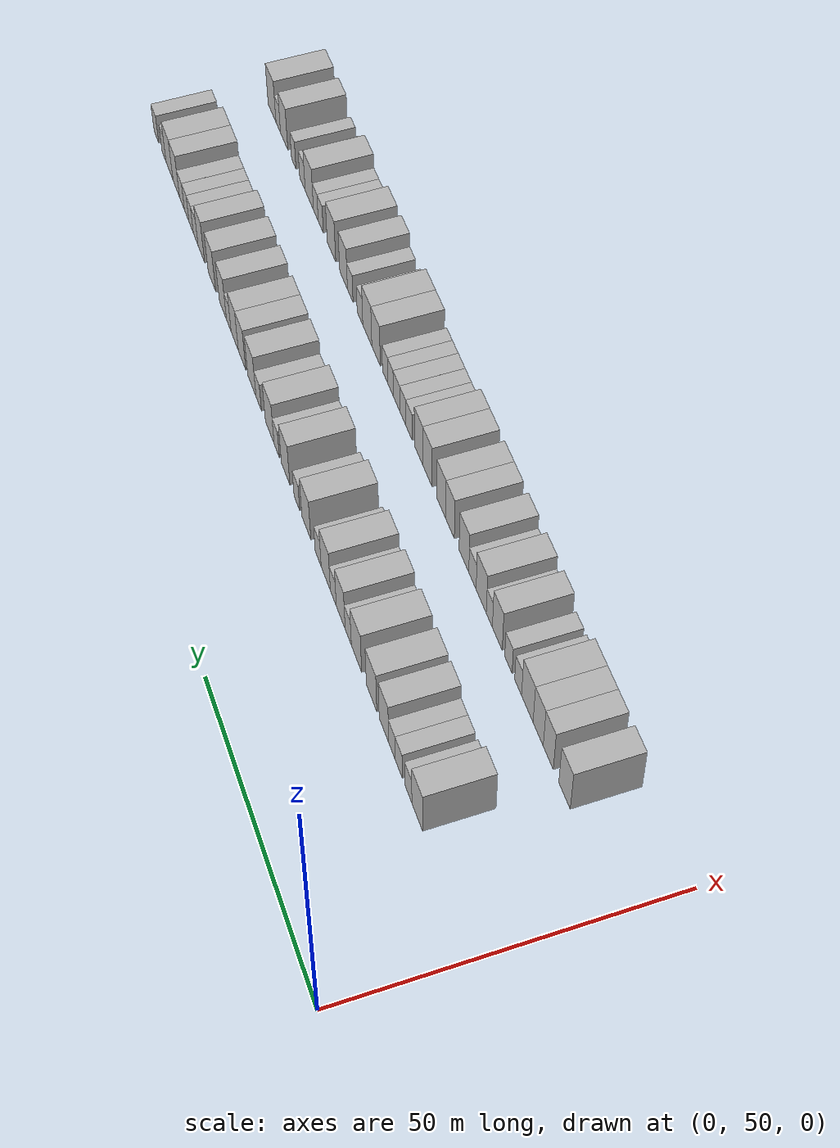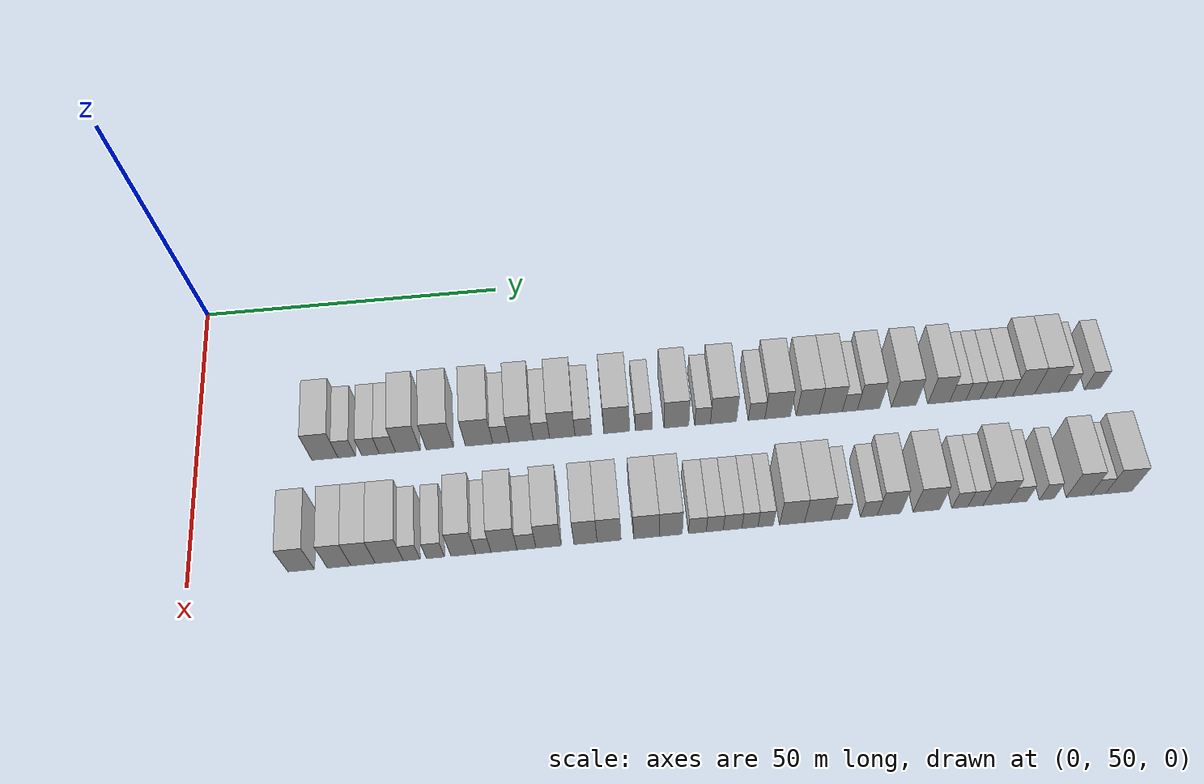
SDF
<sdf version="1.6">
 <world name="default">
  <model name="building_68">
   <static>1</static>
   <pose>25.0000 70.9002 0 0.000000 0.000000 0.000000</pose>
   <link name="link">
    <pose>0 0 4.50 0 0 0</pose>
    <collision name="collision"><geometry><box><size>10.0000 4.2645 9.0000</size></box></geometry></collision>
    <visual name="visual">
     <cast_shadows>0</cast_shadows>
     <geometry><box><size>10.0000 4.2645 9.0000</size></box></geometry>
     <material>
      <script>
       <uri>model://HANNAS_wall/materials/scripts</uri>
       <uri>model://HANNAS_wall/materials/textures</uri>
       <name>vrc/HANNAS_wall</name>
      </script>
     </material>
    </visual>
   </link>
  </model>
  <model name="building_69">
   <static>1</static>
   <pose>25.0000 74.4562 0 0.000000 0.000000 0.000000</pose>
   <link name="link">
    <pose>0 0 3.00 0 0 0</pose>
    <collision name="collision"><geometry><box><size>10.0000 2.8476 6.0000</size></box></geometry></collision>
    <visual name="visual">
     <cast_shadows>0</cast_shadows>
     <geometry><box><size>10.0000 2.8476 6.0000</size></box></geometry>
     <material>
      <script>
       <uri>model://HANNAS_wall/materials/scripts</uri>
       <uri>model://HANNAS_wall/materials/textures</uri>
       <name>vrc/HANNAS_wall</name>
      </script>
     </material>
    </visual>
   </link>
  </model>
  <model name="building_70">
   <static>1</static>
   <pose>25.0000 78.3200 0 0.000000 0.000000 0.000000</pose>
   <link name="link">
    <pose>0 0 3.00 0 0 0</pose>
    <collision name="collision"><geometry><box><size>10.0000 2.8800 6.0000</size></box></geometry></collision>
    <visual name="visual">
     <cast_shadows>0</cast_shadows>
     <geometry><box><size>10.0000 2.8800 6.0000</size></box></geometry>
     <material>
      <script>
       <uri>model://HANNAS_wall/materials/scripts</uri>
       <uri>model://HANNAS_wall/materials/textures</uri>
       <name>vrc/HANNAS_wall</name>
      </script>
     </material>
    </visual>
   </link>
  </model>
  <model name="building_71">
   <static>1</static>
   <pose>25.0000 81.1000 0 0.000000 0.000000 0.000000</pose>
   <link name="link">
    <pose>0 0 3.00 0 0 0</pose>
    <collision name="collision"><geometry><box><size>10.0000 2.6799 6.0000</size></box></geometry></collision>
    <visual name="visual">
     <cast_shadows>0</cast_shadows>
     <geometry><box><size>10.0000 2.6799 6.0000</size></box></geometry>
     <material>
      <script>
       <uri>model://HANNAS_wall/materials/scripts</uri>
       <uri>model://HANNAS_wall/materials/textures</uri>
       <name>vrc/HANNAS_wall</name>
      </script>
     </material>
    </visual>
   </link>
  </model>
  <model name="building_72">
   <static>1</static>
   <pose>25.0000 84.4372 0 0.000000 0.000000 0.000000</pose>
   <link name="link">
    <pose>0 0 4.50 0 0 0</pose>
    <collision name="collision"><geometry><box><size>10.0000 3.9945 9.0000</size></box></geometry></collision>
    <visual name="visual">
     <cast_shadows>0</cast_shadows>
     <geometry><box><size>10.0000 3.9945 9.0000</size></box></geometry>
     <material>
      <script>
       <uri>model://HANNAS_wall/materials/scripts</uri>
       <uri>model://HANNAS_wall/materials/textures</uri>
       <name>vrc/HANNAS_wall</name>
      </script>
     </material>
    </visual>
   </link>
  </model>
  <model name="building_73">
   <static>1</static>
   <pose>25.0000 89.6649 0 0.000000 0.000000 0.000000</pose>
   <link name="link">
    <pose>0 0 4.50 0 0 0</pose>
    <collision name="collision"><geometry><box><size>10.0000 4.4609 9.0000</size></box></geometry></collision>
    <visual name="visual">
     <cast_shadows>0</cast_shadows>
     <geometry><box><size>10.0000 4.4609 9.0000</size></box></geometry>
     <material>
      <script>
       <uri>model://HANNAS_wall/materials/scripts</uri>
       <uri>model://HANNAS_wall/materials/textures</uri>
       <name>vrc/HANNAS_wall</name>
      </script>
     </material>
    </visual>
   </link>
  </model>
  <model name="building_74">
   <static>1</static>
   <pose>25.0000 96.1412 0 0.000000 0.000000 0.000000</pose>
   <link name="link">
    <pose>0 0 4.50 0 0 0</pose>
    <collision name="collision"><geometry><box><size>10.0000 4.4915 9.0000</size></box></geometry></collision>
    <visual name="visual">
     <cast_shadows>0</cast_shadows>
     <geometry><box><size>10.0000 4.4915 9.0000</size></box></geometry>
     <material>
      <script>
       <uri>model://HANNAS_wall/materials/scripts</uri>
       <uri>model://HANNAS_wall/materials/textures</uri>
       <name>vrc/HANNAS_wall</name>
      </script>
     </material>
    </visual>
   </link>
  </model>
  <model name="building_75">
   <static>1</static>
   <pose>25.0000 99.7424 0 0.000000 0.000000 0.000000</pose>
   <link name="link">
    <pose>0 0 3.00 0 0 0</pose>
    <collision name="collision"><geometry><box><size>10.0000 2.7109 6.0000</size></box></geometry></collision>
    <visual name="visual">
     <cast_shadows>0</cast_shadows>
     <geometry><box><size>10.0000 2.7109 6.0000</size></box></geometry>
     <material>
      <script>
       <uri>model://HANNAS_wall/materials/scripts</uri>
       <uri>model://HANNAS_wall/materials/textures</uri>
       <name>vrc/HANNAS_wall</name>
      </script>
     </material>
    </visual>
   </link>
  </model>
  <model name="building_76">
   <static>1</static>
   <pose>25.0000 103.0812 0 0.000000 0.000000 0.000000</pose>
   <link name="link">
    <pose>0 0 4.50 0 0 0</pose>
    <collision name="collision"><geometry><box><size>10.0000 3.9667 9.0000</size></box></geometry></collision>
    <visual name="visual">
     <cast_shadows>0</cast_shadows>
     <geometry><box><size>10.0000 3.9667 9.0000</size></box></geometry>
     <material>
      <script>
       <uri>model://HANNAS_wall/materials/scripts</uri>
       <uri>model://HANNAS_wall/materials/textures</uri>
       <name>vrc/HANNAS_wall</name>
      </script>
     </material>
    </visual>
   </link>
  </model>
  <model name="building_77">
   <static>1</static>
   <pose>25.0000 106.4107 0 0.000000 0.000000 0.000000</pose>
   <link name="link">
    <pose>0 0 3.00 0 0 0</pose>
    <collision name="collision"><geometry><box><size>10.0000 2.6924 6.0000</size></box></geometry></collision>
    <visual name="visual">
     <cast_shadows>0</cast_shadows>
     <geometry><box><size>10.0000 2.6924 6.0000</size></box></geometry>
     <material>
      <script>
       <uri>model://HANNAS_wall/materials/scripts</uri>
       <uri>model://HANNAS_wall/materials/textures</uri>
       <name>vrc/HANNAS_wall</name>
      </script>
     </material>
    </visual>
   </link>
  </model>
  <model name="building_78">
   <static>1</static>
   <pose>25.0000 109.8622 0 0.000000 0.000000 0.000000</pose>
   <link name="link">
    <pose>0 0 4.50 0 0 0</pose>
    <collision name="collision"><geometry><box><size>10.0000 4.2106 9.0000</size></box></geometry></collision>
    <visual name="visual">
     <cast_shadows>0</cast_shadows>
     <geometry><box><size>10.0000 4.2106 9.0000</size></box></geometry>
     <material>
      <script>
       <uri>model://HANNAS_wall/materials/scripts</uri>
       <uri>model://HANNAS_wall/materials/textures</uri>
       <name>vrc/HANNAS_wall</name>
      </script>
     </material>
    </visual>
   </link>
  </model>
  <model name="building_79">
   <static>1</static>
   <pose>25.0000 113.3629 0 0.000000 0.000000 0.000000</pose>
   <link name="link">
    <pose>0 0 3.00 0 0 0</pose>
    <collision name="collision"><geometry><box><size>10.0000 2.7908 6.0000</size></box></geometry></collision>
    <visual name="visual">
     <cast_shadows>0</cast_shadows>
     <geometry><box><size>10.0000 2.7908 6.0000</size></box></geometry>
     <material>
      <script>
       <uri>model://HANNAS_wall/materials/scripts</uri>
       <uri>model://HANNAS_wall/materials/textures</uri>
       <name>vrc/HANNAS_wall</name>
      </script>
     </material>
    </visual>
   </link>
  </model>
  <model name="building_80">
   <static>1</static>
   <pose>25.0000 118.8884 0 0.000000 0.000000 0.000000</pose>
   <link name="link">
    <pose>0 0 4.50 0 0 0</pose>
    <collision name="collision"><geometry><box><size>10.0000 4.2603 9.0000</size></box></geometry></collision>
    <visual name="visual">
     <cast_shadows>0</cast_shadows>
     <geometry><box><size>10.0000 4.2603 9.0000</size></box></geometry>
     <material>
      <script>
       <uri>model://HANNAS_wall/materials/scripts</uri>
       <uri>model://HANNAS_wall/materials/textures</uri>
       <name>vrc/HANNAS_wall</name>
      </script>
     </material>
    </visual>
   </link>
  </model>
  <model name="building_81">
   <static>1</static>
   <pose>25.0000 123.3897 0 0.000000 0.000000 0.000000</pose>
   <link name="link">
    <pose>0 0 3.00 0 0 0</pose>
    <collision name="collision"><geometry><box><size>10.0000 2.7422 6.0000</size></box></geometry></collision>
    <visual name="visual">
     <cast_shadows>0</cast_shadows>
     <geometry><box><size>10.0000 2.7422 6.0000</size></box></geometry>
     <material>
      <script>
       <uri>model://HANNAS_wall/materials/scripts</uri>
       <uri>model://HANNAS_wall/materials/textures</uri>
       <name>vrc/HANNAS_wall</name>
      </script>
     </material>
    </visual>
   </link>
  </model>
  <model name="building_82">
   <static>1</static>
   <pose>25.0000 128.8317 0 0.000000 0.000000 0.000000</pose>
   <link name="link">
    <pose>0 0 4.50 0 0 0</pose>
    <collision name="collision"><geometry><box><size>10.0000 4.1418 9.0000</size></box></geometry></collision>
    <visual name="visual">
     <cast_shadows>0</cast_shadows>
     <geometry><box><size>10.0000 4.1418 9.0000</size></box></geometry>
     <material>
      <script>
       <uri>model://HANNAS_wall/materials/scripts</uri>
       <uri>model://HANNAS_wall/materials/textures</uri>
       <name>vrc/HANNAS_wall</name>
      </script>
     </material>
    </visual>
   </link>
  </model>
  <model name="building_83">
   <static>1</static>
   <pose>25.0000 133.2187 0 0.000000 0.000000 0.000000</pose>
   <link name="link">
    <pose>0 0 3.00 0 0 0</pose>
    <collision name="collision"><geometry><box><size>10.0000 2.6321 6.0000</size></box></geometry></collision>
    <visual name="visual">
     <cast_shadows>0</cast_shadows>
     <geometry><box><size>10.0000 2.6321 6.0000</size></box></geometry>
     <material>
      <script>
       <uri>model://HANNAS_wall/materials/scripts</uri>
       <uri>model://HANNAS_wall/materials/textures</uri>
       <name>vrc/HANNAS_wall</name>
      </script>
     </material>
    </visual>
   </link>
  </model>
  <model name="building_84">
   <static>1</static>
   <pose>25.0000 136.7079 0 0.000000 0.000000 0.000000</pose>
   <link name="link">
    <pose>0 0 4.50 0 0 0</pose>
    <collision name="collision"><geometry><box><size>10.0000 4.3463 9.0000</size></box></geometry></collision>
    <visual name="visual">
     <cast_shadows>0</cast_shadows>
     <geometry><box><size>10.0000 4.3463 9.0000</size></box></geometry>
     <material>
      <script>
       <uri>model://HANNAS_wall/materials/scripts</uri>
       <uri>model://HANNAS_wall/materials/textures</uri>
       <name>vrc/HANNAS_wall</name>
      </script>
     </material>
    </visual>
   </link>
  </model>
  <model name="building_85">
   <static>1</static>
   <pose>25.0000 142.2719 0 0.000000 0.000000 0.000000</pose>
   <link name="link">
    <pose>0 0 3.00 0 0 0</pose>
    <collision name="collision"><geometry><box><size>10.0000 2.7816 6.0000</size></box></geometry></collision>
    <visual name="visual">
     <cast_shadows>0</cast_shadows>
     <geometry><box><size>10.0000 2.7816 6.0000</size></box></geometry>
     <material>
      <script>
       <uri>model://HANNAS_wall/materials/scripts</uri>
       <uri>model://HANNAS_wall/materials/textures</uri>
       <name>vrc/HANNAS_wall</name>
      </script>
     </material>
    </visual>
   </link>
  </model>
  <model name="building_86">
   <static>1</static>
   <pose>25.0000 145.8068 0 0.000000 0.000000 0.000000</pose>
   <link name="link">
    <pose>0 0 4.50 0 0 0</pose>
    <collision name="collision"><geometry><box><size>10.0000 4.2884 9.0000</size></box></geometry></collision>
    <visual name="visual">
     <cast_shadows>0</cast_shadows>
     <geometry><box><size>10.0000 4.2884 9.0000</size></box></geometry>
     <material>
      <script>
       <uri>model://HANNAS_wall/materials/scripts</uri>
       <uri>model://HANNAS_wall/materials/textures</uri>
       <name>vrc/HANNAS_wall</name>
      </script>
     </material>
    </visual>
   </link>
  </model>
  <model name="building_87">
   <static>1</static>
   <pose>25.0000 150.9141 0 0.000000 0.000000 0.000000</pose>
   <link name="link">
    <pose>0 0 4.50 0 0 0</pose>
    <collision name="collision"><geometry><box><size>10.0000 3.9263 9.0000</size></box></geometry></collision>
    <visual name="visual">
     <cast_shadows>0</cast_shadows>
     <geometry><box><size>10.0000 3.9263 9.0000</size></box></geometry>
     <material>
      <script>
       <uri>model://HANNAS_wall/materials/scripts</uri>
       <uri>model://HANNAS_wall/materials/textures</uri>
       <name>vrc/HANNAS_wall</name>
      </script>
     </material>
    </visual>
   </link>
  </model>
  <model name="building_88">
   <static>1</static>
   <pose>25.0000 154.8067 0 0.000000 0.000000 0.000000</pose>
   <link name="link">
    <pose>0 0 4.50 0 0 0</pose>
    <collision name="collision"><geometry><box><size>10.0000 3.8588 9.0000</size></box></geometry></collision>
    <visual name="visual">
     <cast_shadows>0</cast_shadows>
     <geometry><box><size>10.0000 3.8588 9.0000</size></box></geometry>
     <material>
      <script>
       <uri>model://HANNAS_wall/materials/scripts</uri>
       <uri>model://HANNAS_wall/materials/textures</uri>
       <name>vrc/HANNAS_wall</name>
      </script>
     </material>
    </visual>
   </link>
  </model>
  <model name="building_89">
   <static>1</static>
   <pose>25.0000 157.9912 0 0.000000 0.000000 0.000000</pose>
   <link name="link">
    <pose>0 0 3.00 0 0 0</pose>
    <collision name="collision"><geometry><box><size>10.0000 2.5101 6.0000</size></box></geometry></collision>
    <visual name="visual">
     <cast_shadows>0</cast_shadows>
     <geometry><box><size>10.0000 2.5101 6.0000</size></box></geometry>
     <material>
      <script>
       <uri>model://HANNAS_wall/materials/scripts</uri>
       <uri>model://HANNAS_wall/materials/textures</uri>
       <name>vrc/HANNAS_wall</name>
      </script>
     </material>
    </visual>
   </link>
  </model>
  <model name="building_90">
   <static>1</static>
   <pose>25.0000 161.1635 0 0.000000 0.000000 0.000000</pose>
   <link name="link">
    <pose>0 0 4.50 0 0 0</pose>
    <collision name="collision"><geometry><box><size>10.0000 3.8345 9.0000</size></box></geometry></collision>
    <visual name="visual">
     <cast_shadows>0</cast_shadows>
     <geometry><box><size>10.0000 3.8345 9.0000</size></box></geometry>
     <material>
      <script>
       <uri>model://HANNAS_wall/materials/scripts</uri>
       <uri>model://HANNAS_wall/materials/textures</uri>
       <name>vrc/HANNAS_wall</name>
      </script>
     </material>
    </visual>
   </link>
  </model>
  <model name="building_91">
   <static>1</static>
   <pose>25.0000 167.1730 0 0.000000 0.000000 0.000000</pose>
   <link name="link">
    <pose>0 0 4.50 0 0 0</pose>
    <collision name="collision"><geometry><box><size>10.0000 4.1845 9.0000</size></box></geometry></collision>
    <visual name="visual">
     <cast_shadows>0</cast_shadows>
     <geometry><box><size>10.0000 4.1845 9.0000</size></box></geometry>
     <material>
      <script>
       <uri>model://HANNAS_wall/materials/scripts</uri>
       <uri>model://HANNAS_wall/materials/textures</uri>
       <name>vrc/HANNAS_wall</name>
      </script>
     </material>
    </visual>
   </link>
  </model>
  <model name="building_92">
   <static>1</static>
   <pose>25.0000 173.1175 0 0.000000 0.000000 0.000000</pose>
   <link name="link">
    <pose>0 0 4.50 0 0 0</pose>
    <collision name="collision"><geometry><box><size>10.0000 3.7043 9.0000</size></box></geometry></collision>
    <visual name="visual">
     <cast_shadows>0</cast_shadows>
     <geometry><box><size>10.0000 3.7043 9.0000</size></box></geometry>
     <material>
      <script>
       <uri>model://HANNAS_wall/materials/scripts</uri>
       <uri>model://HANNAS_wall/materials/textures</uri>
       <name>vrc/HANNAS_wall</name>
      </script>
     </material>
    </visual>
   </link>
  </model>
  <model name="building_93">
   <static>1</static>
   <pose>25.0000 176.3418 0 0.000000 0.000000 0.000000</pose>
   <link name="link">
    <pose>0 0 3.00 0 0 0</pose>
    <collision name="collision"><geometry><box><size>10.0000 2.7443 6.0000</size></box></geometry></collision>
    <visual name="visual">
     <cast_shadows>0</cast_shadows>
     <geometry><box><size>10.0000 2.7443 6.0000</size></box></geometry>
     <material>
      <script>
       <uri>model://HANNAS_wall/materials/scripts</uri>
       <uri>model://HANNAS_wall/materials/textures</uri>
       <name>vrc/HANNAS_wall</name>
      </script>
     </material>
    </visual>
   </link>
  </model>
  <model name="building_94">
   <static>1</static>
   <pose>25.0000 178.9468 0 0.000000 0.000000 0.000000</pose>
   <link name="link">
    <pose>0 0 3.00 0 0 0</pose>
    <collision name="collision"><geometry><box><size>10.0000 2.4656 6.0000</size></box></geometry></collision>
    <visual name="visual">
     <cast_shadows>0</cast_shadows>
     <geometry><box><size>10.0000 2.4656 6.0000</size></box></geometry>
     <material>
      <script>
       <uri>model://HANNAS_wall/materials/scripts</uri>
       <uri>model://HANNAS_wall/materials/textures</uri>
       <name>vrc/HANNAS_wall</name>
      </script>
     </material>
    </visual>
   </link>
  </model>
  <model name="building_95">
   <static>1</static>
   <pose>25.0000 181.4987 0 0.000000 0.000000 0.000000</pose>
   <link name="link">
    <pose>0 0 3.00 0 0 0</pose>
    <collision name="collision"><geometry><box><size>10.0000 2.6382 6.0000</size></box></geometry></collision>
    <visual name="visual">
     <cast_shadows>0</cast_shadows>
     <geometry><box><size>10.0000 2.6382 6.0000</size></box></geometry>
     <material>
      <script>
       <uri>model://HANNAS_wall/materials/scripts</uri>
       <uri>model://HANNAS_wall/materials/textures</uri>
       <name>vrc/HANNAS_wall</name>
      </script>
     </material>
    </visual>
   </link>
  </model>
  <model name="building_96">
   <static>1</static>
   <pose>25.0000 184.2789 0 0.000000 0.000000 0.000000</pose>
   <link name="link">
    <pose>0 0 3.00 0 0 0</pose>
    <collision name="collision"><geometry><box><size>10.0000 2.9223 6.0000</size></box></geometry></collision>
    <visual name="visual">
     <cast_shadows>0</cast_shadows>
     <geometry><box><size>10.0000 2.9223 6.0000</size></box></geometry>
     <material>
      <script>
       <uri>model://HANNAS_wall/materials/scripts</uri>
       <uri>model://HANNAS_wall/materials/textures</uri>
       <name>vrc/HANNAS_wall</name>
      </script>
     </material>
    </visual>
   </link>
  </model>
  <model name="building_97">
   <static>1</static>
   <pose>25.0000 187.6226 0 0.000000 0.000000 0.000000</pose>
   <link name="link">
    <pose>0 0 4.50 0 0 0</pose>
    <collision name="collision"><geometry><box><size>10.0000 3.7651 9.0000</size></box></geometry></collision>
    <visual name="visual">
     <cast_shadows>0</cast_shadows>
     <geometry><box><size>10.0000 3.7651 9.0000</size></box></geometry>
     <material>
      <script>
       <uri>model://HANNAS_wall/materials/scripts</uri>
       <uri>model://HANNAS_wall/materials/textures</uri>
       <name>vrc/HANNAS_wall</name>
      </script>
     </material>
    </visual>
   </link>
  </model>
  <model name="building_98">
   <static>1</static>
   <pose>25.0000 191.5946 0 0.000000 0.000000 0.000000</pose>
   <link name="link">
    <pose>0 0 4.50 0 0 0</pose>
    <collision name="collision"><geometry><box><size>10.0000 4.1790 9.0000</size></box></geometry></collision>
    <visual name="visual">
     <cast_shadows>0</cast_shadows>
     <geometry><box><size>10.0000 4.1790 9.0000</size></box></geometry>
     <material>
      <script>
       <uri>model://HANNAS_wall/materials/scripts</uri>
       <uri>model://HANNAS_wall/materials/textures</uri>
       <name>vrc/HANNAS_wall</name>
      </script>
     </material>
    </visual>
   </link>
  </model>
  <model name="building_99">
   <static>1</static>
   <pose>25.0000 194.9133 0 0.000000 0.000000 0.000000</pose>
   <link name="link">
    <pose>0 0 3.00 0 0 0</pose>
    <collision name="collision"><geometry><box><size>10.0000 2.4584 6.0000</size></box></geometry></collision>
    <visual name="visual">
     <cast_shadows>0</cast_shadows>
     <geometry><box><size>10.0000 2.4584 6.0000</size></box></geometry>
     <material>
      <script>
       <uri>model://HANNAS_wall/materials/scripts</uri>
       <uri>model://HANNAS_wall/materials/textures</uri>
       <name>vrc/HANNAS_wall</name>
      </script>
     </material>
    </visual>
   </link>
  </model>
  <model name="building_100">
   <static>1</static>
   <pose>25.0000 199.5589 0 0.000000 0.000000 0.000000</pose>
   <link name="link">
    <pose>0 0 3.00 0 0 0</pose>
    <collision name="collision"><geometry><box><size>10.0000 2.8327 6.0000</size></box></geometry></collision>
    <visual name="visual">
     <cast_shadows>0</cast_shadows>
     <geometry><box><size>10.0000 2.8327 6.0000</size></box></geometry>
     <material>
      <script>
       <uri>model://HANNAS_wall/materials/scripts</uri>
       <uri>model://HANNAS_wall/materials/textures</uri>
       <name>vrc/HANNAS_wall</name>
      </script>
     </material>
    </visual>
   </link>
  </model>
  <model name="building_166">
   <static>1</static>
   <pose>44.0000 67.6314 0 0.000000 0.000000 0.000000</pose>
   <link name="link">
    <pose>0 0 4.50 0 0 0</pose>
    <collision name="collision"><geometry><box><size>10.0000 4.1299 9.0000</size></box></geometry></collision>
    <visual name="visual">
     <cast_shadows>0</cast_shadows>
     <geometry><box><size>10.0000 4.1299 9.0000</size></box></geometry>
     <material>
      <script>
       <uri>model://HANNAS_wall/materials/scripts</uri>
       <uri>model://HANNAS_wall/materials/textures</uri>
       <name>vrc/HANNAS_wall</name>
      </script>
     </material>
    </visual>
   </link>
  </model>
  <model name="building_167">
   <static>1</static>
   <pose>44.0000 73.5392 0 0.000000 0.000000 0.000000</pose>
   <link name="link">
    <pose>0 0 4.50 0 0 0</pose>
    <collision name="collision"><geometry><box><size>10.0000 3.6856 9.0000</size></box></geometry></collision>
    <visual name="visual">
     <cast_shadows>0</cast_shadows>
     <geometry><box><size>10.0000 3.6856 9.0000</size></box></geometry>
     <material>
      <script>
       <uri>model://HANNAS_wall/materials/scripts</uri>
       <uri>model://HANNAS_wall/materials/textures</uri>
       <name>vrc/HANNAS_wall</name>
      </script>
     </material>
    </visual>
   </link>
  </model>
  <model name="building_168">
   <static>1</static>
   <pose>44.0000 77.2776 0 0.000000 0.000000 0.000000</pose>
   <link name="link">
    <pose>0 0 4.50 0 0 0</pose>
    <collision name="collision"><geometry><box><size>10.0000 3.7913 9.0000</size></box></geometry></collision>
    <visual name="visual">
     <cast_shadows>0</cast_shadows>
     <geometry><box><size>10.0000 3.7913 9.0000</size></box></geometry>
     <material>
      <script>
       <uri>model://HANNAS_wall/materials/scripts</uri>
       <uri>model://HANNAS_wall/materials/textures</uri>
       <name>vrc/HANNAS_wall</name>
      </script>
     </material>
    </visual>
   </link>
  </model>
  <model name="building_169">
   <static>1</static>
   <pose>44.0000 81.3643 0 0.000000 0.000000 0.000000</pose>
   <link name="link">
    <pose>0 0 4.50 0 0 0</pose>
    <collision name="collision"><geometry><box><size>10.0000 4.3822 9.0000</size></box></geometry></collision>
    <visual name="visual">
     <cast_shadows>0</cast_shadows>
     <geometry><box><size>10.0000 4.3822 9.0000</size></box></geometry>
     <material>
      <script>
       <uri>model://HANNAS_wall/materials/scripts</uri>
       <uri>model://HANNAS_wall/materials/textures</uri>
       <name>vrc/HANNAS_wall</name>
      </script>
     </material>
    </visual>
   </link>
  </model>
  <model name="building_170">
   <static>1</static>
   <pose>44.0000 84.8664 0 0.000000 0.000000 0.000000</pose>
   <link name="link">
    <pose>0 0 3.00 0 0 0</pose>
    <collision name="collision"><geometry><box><size>10.0000 2.6220 6.0000</size></box></geometry></collision>
    <visual name="visual">
     <cast_shadows>0</cast_shadows>
     <geometry><box><size>10.0000 2.6220 6.0000</size></box></geometry>
     <material>
      <script>
       <uri>model://HANNAS_wall/materials/scripts</uri>
       <uri>model://HANNAS_wall/materials/textures</uri>
       <name>vrc/HANNAS_wall</name>
      </script>
     </material>
    </visual>
   </link>
  </model>
  <model name="building_171">
   <static>1</static>
   <pose>44.0000 88.5972 0 0.000000 0.000000 0.000000</pose>
   <link name="link">
    <pose>0 0 3.00 0 0 0</pose>
    <collision name="collision"><geometry><box><size>10.0000 2.8397 6.0000</size></box></geometry></collision>
    <visual name="visual">
     <cast_shadows>0</cast_shadows>
     <geometry><box><size>10.0000 2.8397 6.0000</size></box></geometry>
     <material>
      <script>
       <uri>model://HANNAS_wall/materials/scripts</uri>
       <uri>model://HANNAS_wall/materials/textures</uri>
       <name>vrc/HANNAS_wall</name>
      </script>
     </material>
    </visual>
   </link>
  </model>
  <model name="building_172">
   <static>1</static>
   <pose>44.0000 92.9497 0 0.000000 0.000000 0.000000</pose>
   <link name="link">
    <pose>0 0 4.50 0 0 0</pose>
    <collision name="collision"><geometry><box><size>10.0000 3.8653 9.0000</size></box></geometry></collision>
    <visual name="visual">
     <cast_shadows>0</cast_shadows>
     <geometry><box><size>10.0000 3.8653 9.0000</size></box></geometry>
     <material>
      <script>
       <uri>model://HANNAS_wall/materials/scripts</uri>
       <uri>model://HANNAS_wall/materials/textures</uri>
       <name>vrc/HANNAS_wall</name>
      </script>
     </material>
    </visual>
   </link>
  </model>
  <model name="building_173">
   <static>1</static>
   <pose>44.0000 96.1037 0 0.000000 0.000000 0.000000</pose>
   <link name="link">
    <pose>0 0 3.00 0 0 0</pose>
    <collision name="collision"><geometry><box><size>10.0000 2.4427 6.0000</size></box></geometry></collision>
    <visual name="visual">
     <cast_shadows>0</cast_shadows>
     <geometry><box><size>10.0000 2.4427 6.0000</size></box></geometry>
     <material>
      <script>
       <uri>model://HANNAS_wall/materials/scripts</uri>
       <uri>model://HANNAS_wall/materials/textures</uri>
       <name>vrc/HANNAS_wall</name>
      </script>
     </material>
    </visual>
   </link>
  </model>
  <model name="building_174">
   <static>1</static>
   <pose>44.0000 99.3739 0 0.000000 0.000000 0.000000</pose>
   <link name="link">
    <pose>0 0 4.50 0 0 0</pose>
    <collision name="collision"><geometry><box><size>10.0000 4.0979 9.0000</size></box></geometry></collision>
    <visual name="visual">
     <cast_shadows>0</cast_shadows>
     <geometry><box><size>10.0000 4.0979 9.0000</size></box></geometry>
     <material>
      <script>
       <uri>model://HANNAS_wall/materials/scripts</uri>
       <uri>model://HANNAS_wall/materials/textures</uri>
       <name>vrc/HANNAS_wall</name>
      </script>
     </material>
    </visual>
   </link>
  </model>
  <model name="building_175">
   <static>1</static>
   <pose>44.0000 102.9223 0 0.000000 0.000000 0.000000</pose>
   <link name="link">
    <pose>0 0 3.00 0 0 0</pose>
    <collision name="collision"><geometry><box><size>10.0000 2.9990 6.0000</size></box></geometry></collision>
    <visual name="visual">
     <cast_shadows>0</cast_shadows>
     <geometry><box><size>10.0000 2.9990 6.0000</size></box></geometry>
     <material>
      <script>
       <uri>model://HANNAS_wall/materials/scripts</uri>
       <uri>model://HANNAS_wall/materials/textures</uri>
       <name>vrc/HANNAS_wall</name>
      </script>
     </material>
    </visual>
   </link>
  </model>
  <model name="building_176">
   <static>1</static>
   <pose>44.0000 106.4314 0 0.000000 0.000000 0.000000</pose>
   <link name="link">
    <pose>0 0 4.50 0 0 0</pose>
    <collision name="collision"><geometry><box><size>10.0000 4.0191 9.0000</size></box></geometry></collision>
    <visual name="visual">
     <cast_shadows>0</cast_shadows>
     <geometry><box><size>10.0000 4.0191 9.0000</size></box></geometry>
     <material>
      <script>
       <uri>model://HANNAS_wall/materials/scripts</uri>
       <uri>model://HANNAS_wall/materials/textures</uri>
       <name>vrc/HANNAS_wall</name>
      </script>
     </material>
    </visual>
   </link>
  </model>
  <model name="building_177">
   <static>1</static>
   <pose>44.0000 112.2728 0 0.000000 0.000000 0.000000</pose>
   <link name="link">
    <pose>0 0 4.50 0 0 0</pose>
    <collision name="collision"><geometry><box><size>10.0000 3.6638 9.0000</size></box></geometry></collision>
    <visual name="visual">
     <cast_shadows>0</cast_shadows>
     <geometry><box><size>10.0000 3.6638 9.0000</size></box></geometry>
     <material>
      <script>
       <uri>model://HANNAS_wall/materials/scripts</uri>
       <uri>model://HANNAS_wall/materials/textures</uri>
       <name>vrc/HANNAS_wall</name>
      </script>
     </material>
    </visual>
   </link>
  </model>
  <model name="building_178">
   <static>1</static>
   <pose>44.0000 116.0056 0 0.000000 0.000000 0.000000</pose>
   <link name="link">
    <pose>0 0 4.50 0 0 0</pose>
    <collision name="collision"><geometry><box><size>10.0000 3.8019 9.0000</size></box></geometry></collision>
    <visual name="visual">
     <cast_shadows>0</cast_shadows>
     <geometry><box><size>10.0000 3.8019 9.0000</size></box></geometry>
     <material>
      <script>
       <uri>model://HANNAS_wall/materials/scripts</uri>
       <uri>model://HANNAS_wall/materials/textures</uri>
       <name>vrc/HANNAS_wall</name>
      </script>
     </material>
    </visual>
   </link>
  </model>
  <model name="building_179">
   <static>1</static>
   <pose>44.0000 121.9525 0 0.000000 0.000000 0.000000</pose>
   <link name="link">
    <pose>0 0 4.50 0 0 0</pose>
    <collision name="collision"><geometry><box><size>10.0000 4.0919 9.0000</size></box></geometry></collision>
    <visual name="visual">
     <cast_shadows>0</cast_shadows>
     <geometry><box><size>10.0000 4.0919 9.0000</size></box></geometry>
     <material>
      <script>
       <uri>model://HANNAS_wall/materials/scripts</uri>
       <uri>model://HANNAS_wall/materials/textures</uri>
       <name>vrc/HANNAS_wall</name>
      </script>
     </material>
    </visual>
   </link>
  </model>
  <model name="building_180">
   <static>1</static>
   <pose>44.0000 125.8305 0 0.000000 0.000000 0.000000</pose>
   <link name="link">
    <pose>0 0 4.50 0 0 0</pose>
    <collision name="collision"><geometry><box><size>10.0000 3.6640 9.0000</size></box></geometry></collision>
    <visual name="visual">
     <cast_shadows>0</cast_shadows>
     <geometry><box><size>10.0000 3.6640 9.0000</size></box></geometry>
     <material>
      <script>
       <uri>model://HANNAS_wall/materials/scripts</uri>
       <uri>model://HANNAS_wall/materials/textures</uri>
       <name>vrc/HANNAS_wall</name>
      </script>
     </material>
    </visual>
   </link>
  </model>
  <model name="building_181">
   <static>1</static>
   <pose>44.0000 130.0903 0 0.000000 0.000000 0.000000</pose>
   <link name="link">
    <pose>0 0 3.00 0 0 0</pose>
    <collision name="collision"><geometry><box><size>10.0000 2.8557 6.0000</size></box></geometry></collision>
    <visual name="visual">
     <cast_shadows>0</cast_shadows>
     <geometry><box><size>10.0000 2.8557 6.0000</size></box></geometry>
     <material>
      <script>
       <uri>model://HANNAS_wall/materials/scripts</uri>
       <uri>model://HANNAS_wall/materials/textures</uri>
       <name>vrc/HANNAS_wall</name>
      </script>
     </material>
    </visual>
   </link>
  </model>
  <model name="building_182">
   <static>1</static>
   <pose>44.0000 132.8719 0 0.000000 0.000000 0.000000</pose>
   <link name="link">
    <pose>0 0 3.00 0 0 0</pose>
    <collision name="collision"><geometry><box><size>10.0000 2.7075 6.0000</size></box></geometry></collision>
    <visual name="visual">
     <cast_shadows>0</cast_shadows>
     <geometry><box><size>10.0000 2.7075 6.0000</size></box></geometry>
     <material>
      <script>
       <uri>model://HANNAS_wall/materials/scripts</uri>
       <uri>model://HANNAS_wall/materials/textures</uri>
       <name>vrc/HANNAS_wall</name>
      </script>
     </material>
    </visual>
   </link>
  </model>
  <model name="building_183">
   <static>1</static>
   <pose>44.0000 135.7167 0 0.000000 0.000000 0.000000</pose>
   <link name="link">
    <pose>0 0 3.00 0 0 0</pose>
    <collision name="collision"><geometry><box><size>10.0000 2.9820 6.0000</size></box></geometry></collision>
    <visual name="visual">
     <cast_shadows>0</cast_shadows>
     <geometry><box><size>10.0000 2.9820 6.0000</size></box></geometry>
     <material>
      <script>
       <uri>model://HANNAS_wall/materials/scripts</uri>
       <uri>model://HANNAS_wall/materials/textures</uri>
       <name>vrc/HANNAS_wall</name>
      </script>
     </material>
    </visual>
   </link>
  </model>
  <model name="building_184">
   <static>1</static>
   <pose>44.0000 138.4894 0 0.000000 0.000000 0.000000</pose>
   <link name="link">
    <pose>0 0 3.00 0 0 0</pose>
    <collision name="collision"><geometry><box><size>10.0000 2.5635 6.0000</size></box></geometry></collision>
    <visual name="visual">
     <cast_shadows>0</cast_shadows>
     <geometry><box><size>10.0000 2.5635 6.0000</size></box></geometry>
     <material>
      <script>
       <uri>model://HANNAS_wall/materials/scripts</uri>
       <uri>model://HANNAS_wall/materials/textures</uri>
       <name>vrc/HANNAS_wall</name>
      </script>
     </material>
    </visual>
   </link>
  </model>
  <model name="building_185">
   <static>1</static>
   <pose>44.0000 141.0159 0 0.000000 0.000000 0.000000</pose>
   <link name="link">
    <pose>0 0 3.00 0 0 0</pose>
    <collision name="collision"><geometry><box><size>10.0000 2.4896 6.0000</size></box></geometry></collision>
    <visual name="visual">
     <cast_shadows>0</cast_shadows>
     <geometry><box><size>10.0000 2.4896 6.0000</size></box></geometry>
     <material>
      <script>
       <uri>model://HANNAS_wall/materials/scripts</uri>
       <uri>model://HANNAS_wall/materials/textures</uri>
       <name>vrc/HANNAS_wall</name>
      </script>
     </material>
    </visual>
   </link>
  </model>
  <model name="building_186">
   <static>1</static>
   <pose>44.0000 145.2703 0 0.000000 0.000000 0.000000</pose>
   <link name="link">
    <pose>0 0 4.50 0 0 0</pose>
    <collision name="collision"><geometry><box><size>10.0000 4.0193 9.0000</size></box></geometry></collision>
    <visual name="visual">
     <cast_shadows>0</cast_shadows>
     <geometry><box><size>10.0000 4.0193 9.0000</size></box></geometry>
     <material>
      <script>
       <uri>model://HANNAS_wall/materials/scripts</uri>
       <uri>model://HANNAS_wall/materials/textures</uri>
       <name>vrc/HANNAS_wall</name>
      </script>
     </material>
    </visual>
   </link>
  </model>
  <model name="building_187">
   <static>1</static>
   <pose>44.0000 149.4388 0 0.000000 0.000000 0.000000</pose>
   <link name="link">
    <pose>0 0 4.50 0 0 0</pose>
    <collision name="collision"><geometry><box><size>10.0000 4.3177 9.0000</size></box></geometry></collision>
    <visual name="visual">
     <cast_shadows>0</cast_shadows>
     <geometry><box><size>10.0000 4.3177 9.0000</size></box></geometry>
     <material>
      <script>
       <uri>model://HANNAS_wall/materials/scripts</uri>
       <uri>model://HANNAS_wall/materials/textures</uri>
       <name>vrc/HANNAS_wall</name>
      </script>
     </material>
    </visual>
   </link>
  </model>
  <model name="building_188">
   <static>1</static>
   <pose>44.0000 152.9692 0 0.000000 0.000000 0.000000</pose>
   <link name="link">
    <pose>0 0 3.00 0 0 0</pose>
    <collision name="collision"><geometry><box><size>10.0000 2.7431 6.0000</size></box></geometry></collision>
    <visual name="visual">
     <cast_shadows>0</cast_shadows>
     <geometry><box><size>10.0000 2.7431 6.0000</size></box></geometry>
     <material>
      <script>
       <uri>model://HANNAS_wall/materials/scripts</uri>
       <uri>model://HANNAS_wall/materials/textures</uri>
       <name>vrc/HANNAS_wall</name>
      </script>
     </material>
    </visual>
   </link>
  </model>
  <model name="building_189">
   <static>1</static>
   <pose>44.0000 157.7011 0 0.000000 0.000000 0.000000</pose>
   <link name="link">
    <pose>0 0 3.00 0 0 0</pose>
    <collision name="collision"><geometry><box><size>10.0000 2.7207 6.0000</size></box></geometry></collision>
    <visual name="visual">
     <cast_shadows>0</cast_shadows>
     <geometry><box><size>10.0000 2.7207 6.0000</size></box></geometry>
     <material>
      <script>
       <uri>model://HANNAS_wall/materials/scripts</uri>
       <uri>model://HANNAS_wall/materials/textures</uri>
       <name>vrc/HANNAS_wall</name>
      </script>
     </material>
    </visual>
   </link>
  </model>
  <model name="building_190">
   <static>1</static>
   <pose>44.0000 160.9835 0 0.000000 0.000000 0.000000</pose>
   <link name="link">
    <pose>0 0 4.50 0 0 0</pose>
    <collision name="collision"><geometry><box><size>10.0000 3.8441 9.0000</size></box></geometry></collision>
    <visual name="visual">
     <cast_shadows>0</cast_shadows>
     <geometry><box><size>10.0000 3.8441 9.0000</size></box></geometry>
     <material>
      <script>
       <uri>model://HANNAS_wall/materials/scripts</uri>
       <uri>model://HANNAS_wall/materials/textures</uri>
       <name>vrc/HANNAS_wall</name>
      </script>
     </material>
    </visual>
   </link>
  </model>
  <model name="building_191">
   <static>1</static>
   <pose>44.0000 167.0689 0 0.000000 0.000000 0.000000</pose>
   <link name="link">
    <pose>0 0 4.50 0 0 0</pose>
    <collision name="collision"><geometry><box><size>10.0000 4.3266 9.0000</size></box></geometry></collision>
    <visual name="visual">
     <cast_shadows>0</cast_shadows>
     <geometry><box><size>10.0000 4.3266 9.0000</size></box></geometry>
     <material>
      <script>
       <uri>model://HANNAS_wall/materials/scripts</uri>
       <uri>model://HANNAS_wall/materials/textures</uri>
       <name>vrc/HANNAS_wall</name>
      </script>
     </material>
    </visual>
   </link>
  </model>
  <model name="building_192">
   <static>1</static>
   <pose>44.0000 172.5373 0 0.000000 0.000000 0.000000</pose>
   <link name="link">
    <pose>0 0 3.00 0 0 0</pose>
    <collision name="collision"><geometry><box><size>10.0000 2.6103 6.0000</size></box></geometry></collision>
    <visual name="visual">
     <cast_shadows>0</cast_shadows>
     <geometry><box><size>10.0000 2.6103 6.0000</size></box></geometry>
     <material>
      <script>
       <uri>model://HANNAS_wall/materials/scripts</uri>
       <uri>model://HANNAS_wall/materials/textures</uri>
       <name>vrc/HANNAS_wall</name>
      </script>
     </material>
    </visual>
   </link>
  </model>
  <model name="building_193">
   <static>1</static>
   <pose>44.0000 175.0886 0 0.000000 0.000000 0.000000</pose>
   <link name="link">
    <pose>0 0 3.00 0 0 0</pose>
    <collision name="collision"><geometry><box><size>10.0000 2.4922 6.0000</size></box></geometry></collision>
    <visual name="visual">
     <cast_shadows>0</cast_shadows>
     <geometry><box><size>10.0000 2.4922 6.0000</size></box></geometry>
     <material>
      <script>
       <uri>model://HANNAS_wall/materials/scripts</uri>
       <uri>model://HANNAS_wall/materials/textures</uri>
       <name>vrc/HANNAS_wall</name>
      </script>
     </material>
    </visual>
   </link>
  </model>
  <model name="building_194">
   <static>1</static>
   <pose>44.0000 178.5031 0 0.000000 0.000000 0.000000</pose>
   <link name="link">
    <pose>0 0 4.50 0 0 0</pose>
    <collision name="collision"><geometry><box><size>10.0000 4.3368 9.0000</size></box></geometry></collision>
    <visual name="visual">
     <cast_shadows>0</cast_shadows>
     <geometry><box><size>10.0000 4.3368 9.0000</size></box></geometry>
     <material>
      <script>
       <uri>model://HANNAS_wall/materials/scripts</uri>
       <uri>model://HANNAS_wall/materials/textures</uri>
       <name>vrc/HANNAS_wall</name>
      </script>
     </material>
    </visual>
   </link>
  </model>
  <model name="building_195">
   <static>1</static>
   <pose>44.0000 182.1236 0 0.000000 0.000000 0.000000</pose>
   <link name="link">
    <pose>0 0 3.00 0 0 0</pose>
    <collision name="collision"><geometry><box><size>10.0000 2.9042 6.0000</size></box></geometry></collision>
    <visual name="visual">
     <cast_shadows>0</cast_shadows>
     <geometry><box><size>10.0000 2.9042 6.0000</size></box></geometry>
     <material>
      <script>
       <uri>model://HANNAS_wall/materials/scripts</uri>
       <uri>model://HANNAS_wall/materials/textures</uri>
       <name>vrc/HANNAS_wall</name>
      </script>
     </material>
    </visual>
   </link>
  </model>
  <model name="building_196">
   <static>1</static>
   <pose>44.0000 186.7855 0 0.000000 0.000000 0.000000</pose>
   <link name="link">
    <pose>0 0 3.00 0 0 0</pose>
    <collision name="collision"><geometry><box><size>10.0000 2.4197 6.0000</size></box></geometry></collision>
    <visual name="visual">
     <cast_shadows>0</cast_shadows>
     <geometry><box><size>10.0000 2.4197 6.0000</size></box></geometry>
     <material>
      <script>
       <uri>model://HANNAS_wall/materials/scripts</uri>
       <uri>model://HANNAS_wall/materials/textures</uri>
       <name>vrc/HANNAS_wall</name>
      </script>
     </material>
    </visual>
   </link>
  </model>
  <model name="building_197">
   <static>1</static>
   <pose>44.0000 191.9880 0 0.000000 0.000000 0.000000</pose>
   <link name="link">
    <pose>0 0 4.50 0 0 0</pose>
    <collision name="collision"><geometry><box><size>10.0000 3.9854 9.0000</size></box></geometry></collision>
    <visual name="visual">
     <cast_shadows>0</cast_shadows>
     <geometry><box><size>10.0000 3.9854 9.0000</size></box></geometry>
     <material>
      <script>
       <uri>model://HANNAS_wall/materials/scripts</uri>
       <uri>model://HANNAS_wall/materials/textures</uri>
       <name>vrc/HANNAS_wall</name>
      </script>
     </material>
    </visual>
   </link>
  </model>
  <model name="building_198">
   <static>1</static>
   <pose>44.0000 195.2342 0 0.000000 0.000000 0.000000</pose>
   <link name="link">
    <pose>0 0 3.00 0 0 0</pose>
    <collision name="collision"><geometry><box><size>10.0000 2.5070 6.0000</size></box></geometry></collision>
    <visual name="visual">
     <cast_shadows>0</cast_shadows>
     <geometry><box><size>10.0000 2.5070 6.0000</size></box></geometry>
     <material>
      <script>
       <uri>model://HANNAS_wall/materials/scripts</uri>
       <uri>model://HANNAS_wall/materials/textures</uri>
       <name>vrc/HANNAS_wall</name>
      </script>
     </material>
    </visual>
   </link>
  </model>
  <model name="building_199">
   <static>1</static>
   <pose>44.0000 198.6717 0 0.000000 0.000000 0.000000</pose>
   <link name="link">
    <pose>0 0 4.50 0 0 0</pose>
    <collision name="collision"><geometry><box><size>10.0000 4.3680 9.0000</size></box></geometry></collision>
    <visual name="visual">
     <cast_shadows>0</cast_shadows>
     <geometry><box><size>10.0000 4.3680 9.0000</size></box></geometry>
     <material>
      <script>
       <uri>model://HANNAS_wall/materials/scripts</uri>
       <uri>model://HANNAS_wall/materials/textures</uri>
       <name>vrc/HANNAS_wall</name>
      </script>
     </material>
    </visual>
   </link>
  </model>
 </world>
</sdf>
